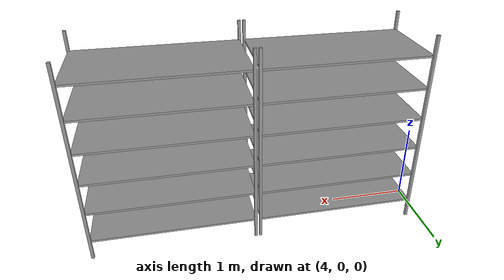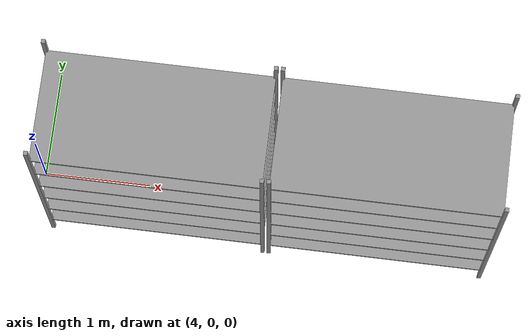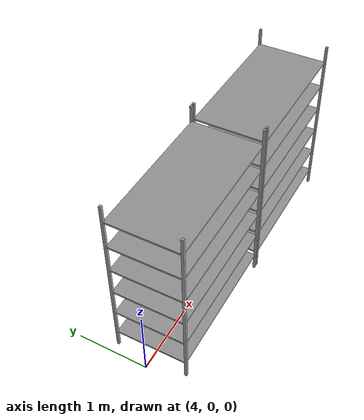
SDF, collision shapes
<sdf version="1.6">
 <model name="shelves">
  <model name="shelf_5">
   <link name="link_1">
    <inertial>
     <mass>1</mass>
     <inertia>
      <ixx>0.166667</ixx>
      <ixy>0</ixy>
      <ixz>0</ixz>
      <iyy>0.166667</iyy>
      <iyz>0</iyz>
      <izz>0.166667</izz>
     </inertia>
    </inertial>
    <visual name="ModelPreview_2::link_1::visual_6">
     <pose>1 0.5 0 0 -0 0</pose>
     <geometry><mesh><uri>model://shelf/model/2-5mDirek.stl</uri><scale>0.001 0.001 0.001</scale></mesh></geometry>
     <material>
      <lighting>1</lighting>
      <script><uri>file://media/materials/scripts/gazebo.material</uri><name>Gazebo/Grey</name></script>
      <shader type="vertex"><normal_map>__default__</normal_map></shader>
      <ambient>0.3 0.3 0.3 1</ambient>
      <diffuse>0.7 0.7 0.7 1</diffuse>
      <specular>0.01 0.01 0.01 1</specular>
      <emissive>0 0 0 1</emissive>
     </material>
    </visual>
    <visual name="ModelPreview_2::link_1::visual_7">
     <pose>-1 0.5 0 0 -0 0</pose>
     <geometry><mesh><uri>model://shelf/model/2-5mDirek.stl</uri><scale>0.001 0.001 0.001</scale></mesh></geometry>
     <material>
      <lighting>1</lighting>
      <script><uri>file://media/materials/scripts/gazebo.material</uri><name>Gazebo/Grey</name></script>
      <shader type="vertex"><normal_map>__default__</normal_map></shader>
      <ambient>0.3 0.3 0.3 1</ambient>
      <diffuse>0.7 0.7 0.7 1</diffuse>
      <specular>0.01 0.01 0.01 1</specular>
      <emissive>0 0 0 1</emissive>
     </material>
    </visual>
    <visual name="ModelPreview_2::link_1::visual_4">
     <pose>0 0 1.85 0 -0 0</pose>
     <geometry><box><size>2 1 0.025</size></box></geometry>
     <material>
      <lighting>1</lighting>
      <script><uri>file://media/materials/scripts/gazebo.material</uri><name>Gazebo/WoodFloor</name></script>
      <shader type="vertex"><normal_map>__default__</normal_map></shader>
      <ambient>0.3 0.3 0.3 1</ambient>
      <diffuse>0.7 0.7 0.7 1</diffuse>
      <specular>0.01 0.01 0.01 1</specular>
      <emissive>0 0 0 1</emissive>
     </material>
    </visual>
    <visual name="ModelPreview_2::link_1::visual_5">
     <pose>0 0 2.25 0 -0 0</pose>
     <geometry><box><size>2 1 0.025</size></box></geometry>
     <material>
      <lighting>1</lighting>
      <script><uri>file://media/materials/scripts/gazebo.material</uri><name>Gazebo/WoodFloor</name></script>
      <shader type="vertex"><normal_map>__default__</normal_map></shader>
      <ambient>0.3 0.3 0.3 1</ambient>
      <diffuse>0.7 0.7 0.7 1</diffuse>
      <specular>0.01 0.01 0.01 1</specular>
      <emissive>0 0 0 1</emissive>
     </material>
    </visual>
    <visual name="ModelPreview_2::link_1::visual_3">
     <pose>0 0 1.45 0 -0 0</pose>
     <geometry><box><size>2 1 0.025</size></box></geometry>
     <material>
      <lighting>1</lighting>
      <script><uri>file://media/materials/scripts/gazebo.material</uri><name>Gazebo/WoodFloor</name></script>
      <shader type="vertex"><normal_map>__default__</normal_map></shader>
      <ambient>0.3 0.3 0.3 1</ambient>
      <diffuse>0.7 0.7 0.7 1</diffuse>
      <specular>0.01 0.01 0.01 1</specular>
      <emissive>0 0 0 1</emissive>
     </material>
    </visual>
    <visual name="ModelPreview_2::link_1::visual_1">
     <pose>0 0 0.65 0 -0 0</pose>
     <geometry><box><size>2 1 0.025</size></box></geometry>
     <material>
      <lighting>1</lighting>
      <script><uri>file://media/materials/scripts/gazebo.material</uri><name>Gazebo/WoodFloor</name></script>
      <shader type="vertex"><normal_map>__default__</normal_map></shader>
      <ambient>0.3 0.3 0.3 1</ambient>
      <diffuse>0.7 0.7 0.7 1</diffuse>
      <specular>0.01 0.01 0.01 1</specular>
      <emissive>0 0 0 1</emissive>
     </material>
    </visual>
    <visual name="visual">
     <pose>0 0 0.25 0 -0 0</pose>
     <geometry><box><size>2 1 0.025</size></box></geometry>
     <material>
      <lighting>1</lighting>
      <script><uri>file://media/materials/scripts/gazebo.material</uri><name>Gazebo/WoodFloor</name></script>
      <shader type="vertex"><normal_map>__default__</normal_map></shader>
      <ambient>0.3 0.3 0.3 1</ambient>
      <diffuse>0.7 0.7 0.7 1</diffuse>
      <specular>0.01 0.01 0.01 1</specular>
      <emissive>0 0 0 1</emissive>
     </material>
    </visual>
    <visual name="ModelPreview_2::link_1::visual_2">
     <pose>0 0 1.05 0 -0 0</pose>
     <geometry><box><size>2 1 0.025</size></box></geometry>
     <material>
      <lighting>1</lighting>
      <script><uri>file://media/materials/scripts/gazebo.material</uri><name>Gazebo/WoodFloor</name></script>
      <shader type="vertex"><normal_map>__default__</normal_map></shader>
      <ambient>0.3 0.3 0.3 1</ambient>
      <diffuse>0.7 0.7 0.7 1</diffuse>
      <specular>0.01 0.01 0.01 1</specular>
      <emissive>0 0 0 1</emissive>
     </material>
    </visual>
    <visual name="ModelPreview_2::link_1::visual_8">
     <pose>1 -0.5 0 0 -0 0</pose>
     <geometry><mesh><uri>model://shelf/model/2-5mDirek.stl</uri><scale>0.001 0.001 0.001</scale></mesh></geometry>
     <material>
      <lighting>1</lighting>
      <script><uri>file://media/materials/scripts/gazebo.material</uri><name>Gazebo/Grey</name></script>
      <shader type="vertex"><normal_map>__default__</normal_map></shader>
      <ambient>0.3 0.3 0.3 1</ambient>
      <diffuse>0.7 0.7 0.7 1</diffuse>
      <specular>0.01 0.01 0.01 1</specular>
      <emissive>0 0 0 1</emissive>
     </material>
    </visual>
    <visual name="ModelPreview_2::link_1::visual_9">
     <pose>-1 -0.5 0 0 -0 0</pose>
     <geometry><mesh><uri>model://shelf/model/2-5mDirek.stl</uri><scale>0.001 0.001 0.001</scale></mesh></geometry>
     <material>
      <lighting>1</lighting>
      <script><uri>file://media/materials/scripts/gazebo.material</uri><name>Gazebo/Grey</name></script>
      <shader type="vertex"><normal_map>__default__</normal_map></shader>
      <ambient>0.3 0.3 0.3 1</ambient>
      <diffuse>0.7 0.7 0.7 1</diffuse>
      <specular>0.01 0.01 0.01 1</specular>
      <emissive>0 0 0 1</emissive>
     </material>
    </visual>
    <collision name="collision_7">
     <pose>1 -0.5 1.25 0 -0 0</pose>
     <geometry><box><size>0.035 0.035 2.5</size></box></geometry>
     <surface>
      <friction>
       <ode><mu>1</mu><mu2>1</mu2><fdir1>0 0 0</fdir1><slip1>0</slip1><slip2>0</slip2></ode>
       <torsional>
        <coefficient>1</coefficient>
        <patch_radius>0</patch_radius>
        <surface_radius>0</surface_radius>
        <use_patch_radius>1</use_patch_radius>
        <ode><slip>0</slip></ode>
       </torsional>
      </friction>
      <bounce><restitution_coefficient>0</restitution_coefficient><threshold>1e+06</threshold></bounce>
      <contact>
       <collide_without_contact>0</collide_without_contact>
       <collide_without_contact_bitmask>1</collide_without_contact_bitmask>
       <collide_bitmask>1</collide_bitmask>
       <ode>
        <soft_cfm>0</soft_cfm>
        <soft_erp>0.2</soft_erp>
        <kp>1e+13</kp>
        <kd>1</kd>
        <max_vel>0.01</max_vel>
        <min_depth>0</min_depth>
       </ode>
       <bullet>
        <split_impulse>1</split_impulse>
        <split_impulse_penetration_threshold>-0.01</split_impulse_penetration_threshold>
        <soft_cfm>0</soft_cfm>
        <soft_erp>0.2</soft_erp>
        <kp>1e+13</kp>
        <kd>1</kd>
       </bullet>
      </contact>
     </surface>
    </collision>
    <collision name="collision_6">
     <pose>1 0.5 1.25 0 -0 0</pose>
     <geometry><box><size>0.035 0.035 2.5</size></box></geometry>
     <surface>
      <friction>
       <ode><mu>1</mu><mu2>1</mu2><fdir1>0 0 0</fdir1><slip1>0</slip1><slip2>0</slip2></ode>
       <torsional>
        <coefficient>1</coefficient>
        <patch_radius>0</patch_radius>
        <surface_radius>0</surface_radius>
        <use_patch_radius>1</use_patch_radius>
        <ode><slip>0</slip></ode>
       </torsional>
      </friction>
      <bounce><restitution_coefficient>0</restitution_coefficient><threshold>1e+06</threshold></bounce>
      <contact>
       <collide_without_contact>0</collide_without_contact>
       <collide_without_contact_bitmask>1</collide_without_contact_bitmask>
       <collide_bitmask>1</collide_bitmask>
       <ode>
        <soft_cfm>0</soft_cfm>
        <soft_erp>0.2</soft_erp>
        <kp>1e+13</kp>
        <kd>1</kd>
        <max_vel>0.01</max_vel>
        <min_depth>0</min_depth>
       </ode>
       <bullet>
        <split_impulse>1</split_impulse>
        <split_impulse_penetration_threshold>-0.01</split_impulse_penetration_threshold>
        <soft_cfm>0</soft_cfm>
        <soft_erp>0.2</soft_erp>
        <kp>1e+13</kp>
        <kd>1</kd>
       </bullet>
      </contact>
     </surface>
    </collision>
    <collision name="collision_2">
     <pose>0 0 1.05 0 -0 0</pose>
     <geometry><box><size>2 1 0.025</size></box></geometry>
     <surface>
      <friction>
       <ode><mu>1</mu><mu2>1</mu2><fdir1>0 0 0</fdir1><slip1>0</slip1><slip2>0</slip2></ode>
       <torsional>
        <coefficient>1</coefficient>
        <patch_radius>0</patch_radius>
        <surface_radius>0</surface_radius>
        <use_patch_radius>1</use_patch_radius>
        <ode><slip>0</slip></ode>
       </torsional>
      </friction>
      <bounce><restitution_coefficient>0</restitution_coefficient><threshold>1e+06</threshold></bounce>
      <contact>
       <collide_without_contact>0</collide_without_contact>
       <collide_without_contact_bitmask>1</collide_without_contact_bitmask>
       <collide_bitmask>1</collide_bitmask>
       <ode>
        <soft_cfm>0</soft_cfm>
        <soft_erp>0.2</soft_erp>
        <kp>1e+13</kp>
        <kd>1</kd>
        <max_vel>0.01</max_vel>
        <min_depth>0</min_depth>
       </ode>
       <bullet>
        <split_impulse>1</split_impulse>
        <split_impulse_penetration_threshold>-0.01</split_impulse_penetration_threshold>
        <soft_cfm>0</soft_cfm>
        <soft_erp>0.2</soft_erp>
        <kp>1e+13</kp>
        <kd>1</kd>
       </bullet>
      </contact>
     </surface>
    </collision>
    <collision name="collision_8">
     <pose>-1 0.5 1.25 0 -0 0</pose>
     <geometry><box><size>0.035 0.035 2.5</size></box></geometry>
     <surface>
      <friction>
       <ode><mu>1</mu><mu2>1</mu2><fdir1>0 0 0</fdir1><slip1>0</slip1><slip2>0</slip2></ode>
       <torsional>
        <coefficient>1</coefficient>
        <patch_radius>0</patch_radius>
        <surface_radius>0</surface_radius>
        <use_patch_radius>1</use_patch_radius>
        <ode><slip>0</slip></ode>
       </torsional>
      </friction>
      <bounce><restitution_coefficient>0</restitution_coefficient><threshold>1e+06</threshold></bounce>
      <contact>
       <collide_without_contact>0</collide_without_contact>
       <collide_without_contact_bitmask>1</collide_without_contact_bitmask>
       <collide_bitmask>1</collide_bitmask>
       <ode>
        <soft_cfm>0</soft_cfm>
        <soft_erp>0.2</soft_erp>
        <kp>1e+13</kp>
        <kd>1</kd>
        <max_vel>0.01</max_vel>
        <min_depth>0</min_depth>
       </ode>
       <bullet>
        <split_impulse>1</split_impulse>
        <split_impulse_penetration_threshold>-0.01</split_impulse_penetration_threshold>
        <soft_cfm>0</soft_cfm>
        <soft_erp>0.2</soft_erp>
        <kp>1e+13</kp>
        <kd>1</kd>
       </bullet>
      </contact>
     </surface>
    </collision>
    <collision name="collision_4">
     <pose>0 0 1.85 0 -0 0</pose>
     <geometry><box><size>2 1 0.025</size></box></geometry>
     <surface>
      <friction>
       <ode><mu>1</mu><mu2>1</mu2><fdir1>0 0 0</fdir1><slip1>0</slip1><slip2>0</slip2></ode>
       <torsional>
        <coefficient>1</coefficient>
        <patch_radius>0</patch_radius>
        <surface_radius>0</surface_radius>
        <use_patch_radius>1</use_patch_radius>
        <ode><slip>0</slip></ode>
       </torsional>
      </friction>
      <bounce><restitution_coefficient>0</restitution_coefficient><threshold>1e+06</threshold></bounce>
      <contact>
       <collide_without_contact>0</collide_without_contact>
       <collide_without_contact_bitmask>1</collide_without_contact_bitmask>
       <collide_bitmask>1</collide_bitmask>
       <ode>
        <soft_cfm>0</soft_cfm>
        <soft_erp>0.2</soft_erp>
        <kp>1e+13</kp>
        <kd>1</kd>
        <max_vel>0.01</max_vel>
        <min_depth>0</min_depth>
       </ode>
       <bullet>
        <split_impulse>1</split_impulse>
        <split_impulse_penetration_threshold>-0.01</split_impulse_penetration_threshold>
        <soft_cfm>0</soft_cfm>
        <soft_erp>0.2</soft_erp>
        <kp>1e+13</kp>
        <kd>1</kd>
       </bullet>
      </contact>
     </surface>
    </collision>
    <collision name="collision_1">
     <pose>0 0 0.65 0 -0 0</pose>
     <geometry><box><size>2 1 0.025</size></box></geometry>
     <surface>
      <friction>
       <ode><mu>1</mu><mu2>1</mu2><fdir1>0 0 0</fdir1><slip1>0</slip1><slip2>0</slip2></ode>
       <torsional>
        <coefficient>1</coefficient>
        <patch_radius>0</patch_radius>
        <surface_radius>0</surface_radius>
        <use_patch_radius>1</use_patch_radius>
        <ode><slip>0</slip></ode>
       </torsional>
      </friction>
      <bounce><restitution_coefficient>0</restitution_coefficient><threshold>1e+06</threshold></bounce>
      <contact>
       <collide_without_contact>0</collide_without_contact>
       <collide_without_contact_bitmask>1</collide_without_contact_bitmask>
       <collide_bitmask>1</collide_bitmask>
       <ode>
        <soft_cfm>0</soft_cfm>
        <soft_erp>0.2</soft_erp>
        <kp>1e+13</kp>
        <kd>1</kd>
        <max_vel>0.01</max_vel>
        <min_depth>0</min_depth>
       </ode>
       <bullet>
        <split_impulse>1</split_impulse>
        <split_impulse_penetration_threshold>-0.01</split_impulse_penetration_threshold>
        <soft_cfm>0</soft_cfm>
        <soft_erp>0.2</soft_erp>
        <kp>1e+13</kp>
        <kd>1</kd>
       </bullet>
      </contact>
     </surface>
    </collision>
    <collision name="collision_3">
     <pose>0 0 1.45 0 -0 0</pose>
     <geometry><box><size>2 1 0.025</size></box></geometry>
     <surface>
      <friction>
       <ode><mu>1</mu><mu2>1</mu2><fdir1>0 0 0</fdir1><slip1>0</slip1><slip2>0</slip2></ode>
       <torsional>
        <coefficient>1</coefficient>
        <patch_radius>0</patch_radius>
        <surface_radius>0</surface_radius>
        <use_patch_radius>1</use_patch_radius>
        <ode><slip>0</slip></ode>
       </torsional>
      </friction>
      <bounce><restitution_coefficient>0</restitution_coefficient><threshold>1e+06</threshold></bounce>
      <contact>
       <collide_without_contact>0</collide_without_contact>
       <collide_without_contact_bitmask>1</collide_without_contact_bitmask>
       <collide_bitmask>1</collide_bitmask>
       <ode>
        <soft_cfm>0</soft_cfm>
        <soft_erp>0.2</soft_erp>
        <kp>1e+13</kp>
        <kd>1</kd>
        <max_vel>0.01</max_vel>
        <min_depth>0</min_depth>
       </ode>
       <bullet>
        <split_impulse>1</split_impulse>
        <split_impulse_penetration_threshold>-0.01</split_impulse_penetration_threshold>
        <soft_cfm>0</soft_cfm>
        <soft_erp>0.2</soft_erp>
        <kp>1e+13</kp>
        <kd>1</kd>
       </bullet>
      </contact>
     </surface>
    </collision>
    <collision name="collision_5">
     <pose>0 0 2.25 0 -0 0</pose>
     <geometry><box><size>2 1 0.025</size></box></geometry>
     <surface>
      <friction>
       <ode><mu>1</mu><mu2>1</mu2><fdir1>0 0 0</fdir1><slip1>0</slip1><slip2>0</slip2></ode>
       <torsional>
        <coefficient>1</coefficient>
        <patch_radius>0</patch_radius>
        <surface_radius>0</surface_radius>
        <use_patch_radius>1</use_patch_radius>
        <ode><slip>0</slip></ode>
       </torsional>
      </friction>
      <bounce><restitution_coefficient>0</restitution_coefficient><threshold>1e+06</threshold></bounce>
      <contact>
       <collide_without_contact>0</collide_without_contact>
       <collide_without_contact_bitmask>1</collide_without_contact_bitmask>
       <collide_bitmask>1</collide_bitmask>
       <ode>
        <soft_cfm>0</soft_cfm>
        <soft_erp>0.2</soft_erp>
        <kp>1e+13</kp>
        <kd>1</kd>
        <max_vel>0.01</max_vel>
        <min_depth>0</min_depth>
       </ode>
       <bullet>
        <split_impulse>1</split_impulse>
        <split_impulse_penetration_threshold>-0.01</split_impulse_penetration_threshold>
        <soft_cfm>0</soft_cfm>
        <soft_erp>0.2</soft_erp>
        <kp>1e+13</kp>
        <kd>1</kd>
       </bullet>
      </contact>
     </surface>
    </collision>
    <collision name="collision">
     <pose>0 0 0.25 0 -0 0</pose>
     <geometry><box><size>2 1 0.025</size></box></geometry>
     <surface>
      <friction>
       <ode><mu>1</mu><mu2>1</mu2><fdir1>0 0 0</fdir1><slip1>0</slip1><slip2>0</slip2></ode>
       <torsional>
        <coefficient>1</coefficient>
        <patch_radius>0</patch_radius>
        <surface_radius>0</surface_radius>
        <use_patch_radius>1</use_patch_radius>
        <ode><slip>0</slip></ode>
       </torsional>
      </friction>
      <bounce><restitution_coefficient>0</restitution_coefficient><threshold>1e+06</threshold></bounce>
      <contact>
       <collide_without_contact>0</collide_without_contact>
       <collide_without_contact_bitmask>1</collide_without_contact_bitmask>
       <collide_bitmask>1</collide_bitmask>
       <ode>
        <soft_cfm>0</soft_cfm>
        <soft_erp>0.2</soft_erp>
        <kp>1e+13</kp>
        <kd>1</kd>
        <max_vel>0.01</max_vel>
        <min_depth>0</min_depth>
       </ode>
       <bullet>
        <split_impulse>1</split_impulse>
        <split_impulse_penetration_threshold>-0.01</split_impulse_penetration_threshold>
        <soft_cfm>0</soft_cfm>
        <soft_erp>0.2</soft_erp>
        <kp>1e+13</kp>
        <kd>1</kd>
       </bullet>
      </contact>
     </surface>
    </collision>
    <collision name="collision_9">
     <pose>-1 -0.5 1.25 0 -0 0</pose>
     <geometry><box><size>0.035 0.035 2.5</size></box></geometry>
     <surface>
      <friction>
       <ode><mu>1</mu><mu2>1</mu2><fdir1>0 0 0</fdir1><slip1>0</slip1><slip2>0</slip2></ode>
       <torsional>
        <coefficient>1</coefficient>
        <patch_radius>0</patch_radius>
        <surface_radius>0</surface_radius>
        <use_patch_radius>1</use_patch_radius>
        <ode><slip>0</slip></ode>
       </torsional>
      </friction>
      <bounce><restitution_coefficient>0</restitution_coefficient><threshold>1e+06</threshold></bounce>
      <contact>
       <collide_without_contact>0</collide_without_contact>
       <collide_without_contact_bitmask>1</collide_without_contact_bitmask>
       <collide_bitmask>1</collide_bitmask>
       <ode>
        <soft_cfm>0</soft_cfm>
        <soft_erp>0.2</soft_erp>
        <kp>1e+13</kp>
        <kd>1</kd>
        <max_vel>0.01</max_vel>
        <min_depth>0</min_depth>
       </ode>
       <bullet>
        <split_impulse>1</split_impulse>
        <split_impulse_penetration_threshold>-0.01</split_impulse_penetration_threshold>
        <soft_cfm>0</soft_cfm>
        <soft_erp>0.2</soft_erp>
        <kp>1e+13</kp>
        <kd>1</kd>
       </bullet>
      </contact>
     </surface>
    </collision>
   </link>
   <static>1</static>
   <pose>5.15039 0.000698 0 0 -0 0</pose>
  </model>
  <model name="shelf_6">
   <link name="link_1">
    <inertial>
     <mass>1</mass>
     <inertia>
      <ixx>0.166667</ixx>
      <ixy>0</ixy>
      <ixz>0</ixz>
      <iyy>0.166667</iyy>
      <iyz>0</iyz>
      <izz>0.166667</izz>
     </inertia>
    </inertial>
    <visual name="ModelPreview_2::link_1::visual_6">
     <pose>1 0.5 0 0 -0 0</pose>
     <geometry><mesh><uri>model://shelf/model/2-5mDirek.stl</uri><scale>0.001 0.001 0.001</scale></mesh></geometry>
     <material>
      <lighting>1</lighting>
      <script><uri>file://media/materials/scripts/gazebo.material</uri><name>Gazebo/Grey</name></script>
      <shader type="vertex"><normal_map>__default__</normal_map></shader>
      <ambient>0.3 0.3 0.3 1</ambient>
      <diffuse>0.7 0.7 0.7 1</diffuse>
      <specular>0.01 0.01 0.01 1</specular>
      <emissive>0 0 0 1</emissive>
     </material>
    </visual>
    <visual name="ModelPreview_2::link_1::visual_7">
     <pose>-1 0.5 0 0 -0 0</pose>
     <geometry><mesh><uri>model://shelf/model/2-5mDirek.stl</uri><scale>0.001 0.001 0.001</scale></mesh></geometry>
     <material>
      <lighting>1</lighting>
      <script><uri>file://media/materials/scripts/gazebo.material</uri><name>Gazebo/Grey</name></script>
      <shader type="vertex"><normal_map>__default__</normal_map></shader>
      <ambient>0.3 0.3 0.3 1</ambient>
      <diffuse>0.7 0.7 0.7 1</diffuse>
      <specular>0.01 0.01 0.01 1</specular>
      <emissive>0 0 0 1</emissive>
     </material>
    </visual>
    <visual name="ModelPreview_2::link_1::visual_4">
     <pose>0 0 1.85 0 -0 0</pose>
     <geometry><box><size>2 1 0.025</size></box></geometry>
     <material>
      <lighting>1</lighting>
      <script><uri>file://media/materials/scripts/gazebo.material</uri><name>Gazebo/WoodFloor</name></script>
      <shader type="vertex"><normal_map>__default__</normal_map></shader>
      <ambient>0.3 0.3 0.3 1</ambient>
      <diffuse>0.7 0.7 0.7 1</diffuse>
      <specular>0.01 0.01 0.01 1</specular>
      <emissive>0 0 0 1</emissive>
     </material>
    </visual>
    <visual name="ModelPreview_2::link_1::visual_5">
     <pose>0 0 2.25 0 -0 0</pose>
     <geometry><box><size>2 1 0.025</size></box></geometry>
     <material>
      <lighting>1</lighting>
      <script><uri>file://media/materials/scripts/gazebo.material</uri><name>Gazebo/WoodFloor</name></script>
      <shader type="vertex"><normal_map>__default__</normal_map></shader>
      <ambient>0.3 0.3 0.3 1</ambient>
      <diffuse>0.7 0.7 0.7 1</diffuse>
      <specular>0.01 0.01 0.01 1</specular>
      <emissive>0 0 0 1</emissive>
     </material>
    </visual>
    <visual name="ModelPreview_2::link_1::visual_3">
     <pose>0 0 1.45 0 -0 0</pose>
     <geometry><box><size>2 1 0.025</size></box></geometry>
     <material>
      <lighting>1</lighting>
      <script><uri>file://media/materials/scripts/gazebo.material</uri><name>Gazebo/WoodFloor</name></script>
      <shader type="vertex"><normal_map>__default__</normal_map></shader>
      <ambient>0.3 0.3 0.3 1</ambient>
      <diffuse>0.7 0.7 0.7 1</diffuse>
      <specular>0.01 0.01 0.01 1</specular>
      <emissive>0 0 0 1</emissive>
     </material>
    </visual>
    <visual name="ModelPreview_2::link_1::visual_1">
     <pose>0 0 0.65 0 -0 0</pose>
     <geometry><box><size>2 1 0.025</size></box></geometry>
     <material>
      <lighting>1</lighting>
      <script><uri>file://media/materials/scripts/gazebo.material</uri><name>Gazebo/WoodFloor</name></script>
      <shader type="vertex"><normal_map>__default__</normal_map></shader>
      <ambient>0.3 0.3 0.3 1</ambient>
      <diffuse>0.7 0.7 0.7 1</diffuse>
      <specular>0.01 0.01 0.01 1</specular>
      <emissive>0 0 0 1</emissive>
     </material>
    </visual>
    <visual name="visual">
     <pose>0 0 0.25 0 -0 0</pose>
     <geometry><box><size>2 1 0.025</size></box></geometry>
     <material>
      <lighting>1</lighting>
      <script><uri>file://media/materials/scripts/gazebo.material</uri><name>Gazebo/WoodFloor</name></script>
      <shader type="vertex"><normal_map>__default__</normal_map></shader>
      <ambient>0.3 0.3 0.3 1</ambient>
      <diffuse>0.7 0.7 0.7 1</diffuse>
      <specular>0.01 0.01 0.01 1</specular>
      <emissive>0 0 0 1</emissive>
     </material>
    </visual>
    <visual name="ModelPreview_2::link_1::visual_2">
     <pose>0 0 1.05 0 -0 0</pose>
     <geometry><box><size>2 1 0.025</size></box></geometry>
     <material>
      <lighting>1</lighting>
      <script><uri>file://media/materials/scripts/gazebo.material</uri><name>Gazebo/WoodFloor</name></script>
      <shader type="vertex"><normal_map>__default__</normal_map></shader>
      <ambient>0.3 0.3 0.3 1</ambient>
      <diffuse>0.7 0.7 0.7 1</diffuse>
      <specular>0.01 0.01 0.01 1</specular>
      <emissive>0 0 0 1</emissive>
     </material>
    </visual>
    <visual name="ModelPreview_2::link_1::visual_8">
     <pose>1 -0.5 0 0 -0 0</pose>
     <geometry><mesh><uri>model://shelf/model/2-5mDirek.stl</uri><scale>0.001 0.001 0.001</scale></mesh></geometry>
     <material>
      <lighting>1</lighting>
      <script><uri>file://media/materials/scripts/gazebo.material</uri><name>Gazebo/Grey</name></script>
      <shader type="vertex"><normal_map>__default__</normal_map></shader>
      <ambient>0.3 0.3 0.3 1</ambient>
      <diffuse>0.7 0.7 0.7 1</diffuse>
      <specular>0.01 0.01 0.01 1</specular>
      <emissive>0 0 0 1</emissive>
     </material>
    </visual>
    <visual name="ModelPreview_2::link_1::visual_9">
     <pose>-1 -0.5 0 0 -0 0</pose>
     <geometry><mesh><uri>model://shelf/model/2-5mDirek.stl</uri><scale>0.001 0.001 0.001</scale></mesh></geometry>
     <material>
      <lighting>1</lighting>
      <script><uri>file://media/materials/scripts/gazebo.material</uri><name>Gazebo/Grey</name></script>
      <shader type="vertex"><normal_map>__default__</normal_map></shader>
      <ambient>0.3 0.3 0.3 1</ambient>
      <diffuse>0.7 0.7 0.7 1</diffuse>
      <specular>0.01 0.01 0.01 1</specular>
      <emissive>0 0 0 1</emissive>
     </material>
    </visual>
    <collision name="collision_7">
     <pose>1 -0.5 1.25 0 -0 0</pose>
     <geometry><box><size>0.035 0.035 2.5</size></box></geometry>
     <surface>
      <friction>
       <ode><mu>1</mu><mu2>1</mu2><fdir1>0 0 0</fdir1><slip1>0</slip1><slip2>0</slip2></ode>
       <torsional>
        <coefficient>1</coefficient>
        <patch_radius>0</patch_radius>
        <surface_radius>0</surface_radius>
        <use_patch_radius>1</use_patch_radius>
        <ode><slip>0</slip></ode>
       </torsional>
      </friction>
      <bounce><restitution_coefficient>0</restitution_coefficient><threshold>1e+06</threshold></bounce>
      <contact>
       <collide_without_contact>0</collide_without_contact>
       <collide_without_contact_bitmask>1</collide_without_contact_bitmask>
       <collide_bitmask>1</collide_bitmask>
       <ode>
        <soft_cfm>0</soft_cfm>
        <soft_erp>0.2</soft_erp>
        <kp>1e+13</kp>
        <kd>1</kd>
        <max_vel>0.01</max_vel>
        <min_depth>0</min_depth>
       </ode>
       <bullet>
        <split_impulse>1</split_impulse>
        <split_impulse_penetration_threshold>-0.01</split_impulse_penetration_threshold>
        <soft_cfm>0</soft_cfm>
        <soft_erp>0.2</soft_erp>
        <kp>1e+13</kp>
        <kd>1</kd>
       </bullet>
      </contact>
     </surface>
    </collision>
    <collision name="collision_6">
     <pose>1 0.5 1.25 0 -0 0</pose>
     <geometry><box><size>0.035 0.035 2.5</size></box></geometry>
     <surface>
      <friction>
       <ode><mu>1</mu><mu2>1</mu2><fdir1>0 0 0</fdir1><slip1>0</slip1><slip2>0</slip2></ode>
       <torsional>
        <coefficient>1</coefficient>
        <patch_radius>0</patch_radius>
        <surface_radius>0</surface_radius>
        <use_patch_radius>1</use_patch_radius>
        <ode><slip>0</slip></ode>
       </torsional>
      </friction>
      <bounce><restitution_coefficient>0</restitution_coefficient><threshold>1e+06</threshold></bounce>
      <contact>
       <collide_without_contact>0</collide_without_contact>
       <collide_without_contact_bitmask>1</collide_without_contact_bitmask>
       <collide_bitmask>1</collide_bitmask>
       <ode>
        <soft_cfm>0</soft_cfm>
        <soft_erp>0.2</soft_erp>
        <kp>1e+13</kp>
        <kd>1</kd>
        <max_vel>0.01</max_vel>
        <min_depth>0</min_depth>
       </ode>
       <bullet>
        <split_impulse>1</split_impulse>
        <split_impulse_penetration_threshold>-0.01</split_impulse_penetration_threshold>
        <soft_cfm>0</soft_cfm>
        <soft_erp>0.2</soft_erp>
        <kp>1e+13</kp>
        <kd>1</kd>
       </bullet>
      </contact>
     </surface>
    </collision>
    <collision name="collision_2">
     <pose>0 0 1.05 0 -0 0</pose>
     <geometry><box><size>2 1 0.025</size></box></geometry>
     <surface>
      <friction>
       <ode><mu>1</mu><mu2>1</mu2><fdir1>0 0 0</fdir1><slip1>0</slip1><slip2>0</slip2></ode>
       <torsional>
        <coefficient>1</coefficient>
        <patch_radius>0</patch_radius>
        <surface_radius>0</surface_radius>
        <use_patch_radius>1</use_patch_radius>
        <ode><slip>0</slip></ode>
       </torsional>
      </friction>
      <bounce><restitution_coefficient>0</restitution_coefficient><threshold>1e+06</threshold></bounce>
      <contact>
       <collide_without_contact>0</collide_without_contact>
       <collide_without_contact_bitmask>1</collide_without_contact_bitmask>
       <collide_bitmask>1</collide_bitmask>
       <ode>
        <soft_cfm>0</soft_cfm>
        <soft_erp>0.2</soft_erp>
        <kp>1e+13</kp>
        <kd>1</kd>
        <max_vel>0.01</max_vel>
        <min_depth>0</min_depth>
       </ode>
       <bullet>
        <split_impulse>1</split_impulse>
        <split_impulse_penetration_threshold>-0.01</split_impulse_penetration_threshold>
        <soft_cfm>0</soft_cfm>
        <soft_erp>0.2</soft_erp>
        <kp>1e+13</kp>
        <kd>1</kd>
       </bullet>
      </contact>
     </surface>
    </collision>
    <collision name="collision_8">
     <pose>-1 0.5 1.25 0 -0 0</pose>
     <geometry><box><size>0.035 0.035 2.5</size></box></geometry>
     <surface>
      <friction>
       <ode><mu>1</mu><mu2>1</mu2><fdir1>0 0 0</fdir1><slip1>0</slip1><slip2>0</slip2></ode>
       <torsional>
        <coefficient>1</coefficient>
        <patch_radius>0</patch_radius>
        <surface_radius>0</surface_radius>
        <use_patch_radius>1</use_patch_radius>
        <ode><slip>0</slip></ode>
       </torsional>
      </friction>
      <bounce><restitution_coefficient>0</restitution_coefficient><threshold>1e+06</threshold></bounce>
      <contact>
       <collide_without_contact>0</collide_without_contact>
       <collide_without_contact_bitmask>1</collide_without_contact_bitmask>
       <collide_bitmask>1</collide_bitmask>
       <ode>
        <soft_cfm>0</soft_cfm>
        <soft_erp>0.2</soft_erp>
        <kp>1e+13</kp>
        <kd>1</kd>
        <max_vel>0.01</max_vel>
        <min_depth>0</min_depth>
       </ode>
       <bullet>
        <split_impulse>1</split_impulse>
        <split_impulse_penetration_threshold>-0.01</split_impulse_penetration_threshold>
        <soft_cfm>0</soft_cfm>
        <soft_erp>0.2</soft_erp>
        <kp>1e+13</kp>
        <kd>1</kd>
       </bullet>
      </contact>
     </surface>
    </collision>
    <collision name="collision_4">
     <pose>0 0 1.85 0 -0 0</pose>
     <geometry><box><size>2 1 0.025</size></box></geometry>
     <surface>
      <friction>
       <ode><mu>1</mu><mu2>1</mu2><fdir1>0 0 0</fdir1><slip1>0</slip1><slip2>0</slip2></ode>
       <torsional>
        <coefficient>1</coefficient>
        <patch_radius>0</patch_radius>
        <surface_radius>0</surface_radius>
        <use_patch_radius>1</use_patch_radius>
        <ode><slip>0</slip></ode>
       </torsional>
      </friction>
      <bounce><restitution_coefficient>0</restitution_coefficient><threshold>1e+06</threshold></bounce>
      <contact>
       <collide_without_contact>0</collide_without_contact>
       <collide_without_contact_bitmask>1</collide_without_contact_bitmask>
       <collide_bitmask>1</collide_bitmask>
       <ode>
        <soft_cfm>0</soft_cfm>
        <soft_erp>0.2</soft_erp>
        <kp>1e+13</kp>
        <kd>1</kd>
        <max_vel>0.01</max_vel>
        <min_depth>0</min_depth>
       </ode>
       <bullet>
        <split_impulse>1</split_impulse>
        <split_impulse_penetration_threshold>-0.01</split_impulse_penetration_threshold>
        <soft_cfm>0</soft_cfm>
        <soft_erp>0.2</soft_erp>
        <kp>1e+13</kp>
        <kd>1</kd>
       </bullet>
      </contact>
     </surface>
    </collision>
    <collision name="collision_1">
     <pose>0 0 0.65 0 -0 0</pose>
     <geometry><box><size>2 1 0.025</size></box></geometry>
     <surface>
      <friction>
       <ode><mu>1</mu><mu2>1</mu2><fdir1>0 0 0</fdir1><slip1>0</slip1><slip2>0</slip2></ode>
       <torsional>
        <coefficient>1</coefficient>
        <patch_radius>0</patch_radius>
        <surface_radius>0</surface_radius>
        <use_patch_radius>1</use_patch_radius>
        <ode><slip>0</slip></ode>
       </torsional>
      </friction>
      <bounce><restitution_coefficient>0</restitution_coefficient><threshold>1e+06</threshold></bounce>
      <contact>
       <collide_without_contact>0</collide_without_contact>
       <collide_without_contact_bitmask>1</collide_without_contact_bitmask>
       <collide_bitmask>1</collide_bitmask>
       <ode>
        <soft_cfm>0</soft_cfm>
        <soft_erp>0.2</soft_erp>
        <kp>1e+13</kp>
        <kd>1</kd>
        <max_vel>0.01</max_vel>
        <min_depth>0</min_depth>
       </ode>
       <bullet>
        <split_impulse>1</split_impulse>
        <split_impulse_penetration_threshold>-0.01</split_impulse_penetration_threshold>
        <soft_cfm>0</soft_cfm>
        <soft_erp>0.2</soft_erp>
        <kp>1e+13</kp>
        <kd>1</kd>
       </bullet>
      </contact>
     </surface>
    </collision>
    <collision name="collision_3">
     <pose>0 0 1.45 0 -0 0</pose>
     <geometry><box><size>2 1 0.025</size></box></geometry>
     <surface>
      <friction>
       <ode><mu>1</mu><mu2>1</mu2><fdir1>0 0 0</fdir1><slip1>0</slip1><slip2>0</slip2></ode>
       <torsional>
        <coefficient>1</coefficient>
        <patch_radius>0</patch_radius>
        <surface_radius>0</surface_radius>
        <use_patch_radius>1</use_patch_radius>
        <ode><slip>0</slip></ode>
       </torsional>
      </friction>
      <bounce><restitution_coefficient>0</restitution_coefficient><threshold>1e+06</threshold></bounce>
      <contact>
       <collide_without_contact>0</collide_without_contact>
       <collide_without_contact_bitmask>1</collide_without_contact_bitmask>
       <collide_bitmask>1</collide_bitmask>
       <ode>
        <soft_cfm>0</soft_cfm>
        <soft_erp>0.2</soft_erp>
        <kp>1e+13</kp>
        <kd>1</kd>
        <max_vel>0.01</max_vel>
        <min_depth>0</min_depth>
       </ode>
       <bullet>
        <split_impulse>1</split_impulse>
        <split_impulse_penetration_threshold>-0.01</split_impulse_penetration_threshold>
        <soft_cfm>0</soft_cfm>
        <soft_erp>0.2</soft_erp>
        <kp>1e+13</kp>
        <kd>1</kd>
       </bullet>
      </contact>
     </surface>
    </collision>
    <collision name="collision_5">
     <pose>0 0 2.25 0 -0 0</pose>
     <geometry><box><size>2 1 0.025</size></box></geometry>
     <surface>
      <friction>
       <ode><mu>1</mu><mu2>1</mu2><fdir1>0 0 0</fdir1><slip1>0</slip1><slip2>0</slip2></ode>
       <torsional>
        <coefficient>1</coefficient>
        <patch_radius>0</patch_radius>
        <surface_radius>0</surface_radius>
        <use_patch_radius>1</use_patch_radius>
        <ode><slip>0</slip></ode>
       </torsional>
      </friction>
      <bounce><restitution_coefficient>0</restitution_coefficient><threshold>1e+06</threshold></bounce>
      <contact>
       <collide_without_contact>0</collide_without_contact>
       <collide_without_contact_bitmask>1</collide_without_contact_bitmask>
       <collide_bitmask>1</collide_bitmask>
       <ode>
        <soft_cfm>0</soft_cfm>
        <soft_erp>0.2</soft_erp>
        <kp>1e+13</kp>
        <kd>1</kd>
        <max_vel>0.01</max_vel>
        <min_depth>0</min_depth>
       </ode>
       <bullet>
        <split_impulse>1</split_impulse>
        <split_impulse_penetration_threshold>-0.01</split_impulse_penetration_threshold>
        <soft_cfm>0</soft_cfm>
        <soft_erp>0.2</soft_erp>
        <kp>1e+13</kp>
        <kd>1</kd>
       </bullet>
      </contact>
     </surface>
    </collision>
    <collision name="collision">
     <pose>0 0 0.25 0 -0 0</pose>
     <geometry><box><size>2 1 0.025</size></box></geometry>
     <surface>
      <friction>
       <ode><mu>1</mu><mu2>1</mu2><fdir1>0 0 0</fdir1><slip1>0</slip1><slip2>0</slip2></ode>
       <torsional>
        <coefficient>1</coefficient>
        <patch_radius>0</patch_radius>
        <surface_radius>0</surface_radius>
        <use_patch_radius>1</use_patch_radius>
        <ode><slip>0</slip></ode>
       </torsional>
      </friction>
      <bounce><restitution_coefficient>0</restitution_coefficient><threshold>1e+06</threshold></bounce>
      <contact>
       <collide_without_contact>0</collide_without_contact>
       <collide_without_contact_bitmask>1</collide_without_contact_bitmask>
       <collide_bitmask>1</collide_bitmask>
       <ode>
        <soft_cfm>0</soft_cfm>
        <soft_erp>0.2</soft_erp>
        <kp>1e+13</kp>
        <kd>1</kd>
        <max_vel>0.01</max_vel>
        <min_depth>0</min_depth>
       </ode>
       <bullet>
        <split_impulse>1</split_impulse>
        <split_impulse_penetration_threshold>-0.01</split_impulse_penetration_threshold>
        <soft_cfm>0</soft_cfm>
        <soft_erp>0.2</soft_erp>
        <kp>1e+13</kp>
        <kd>1</kd>
       </bullet>
      </contact>
     </surface>
    </collision>
    <collision name="collision_9">
     <pose>-1 -0.5 1.25 0 -0 0</pose>
     <geometry><box><size>0.035 0.035 2.5</size></box></geometry>
     <surface>
      <friction>
       <ode><mu>1</mu><mu2>1</mu2><fdir1>0 0 0</fdir1><slip1>0</slip1><slip2>0</slip2></ode>
       <torsional>
        <coefficient>1</coefficient>
        <patch_radius>0</patch_radius>
        <surface_radius>0</surface_radius>
        <use_patch_radius>1</use_patch_radius>
        <ode><slip>0</slip></ode>
       </torsional>
      </friction>
      <bounce><restitution_coefficient>0</restitution_coefficient><threshold>1e+06</threshold></bounce>
      <contact>
       <collide_without_contact>0</collide_without_contact>
       <collide_without_contact_bitmask>1</collide_without_contact_bitmask>
       <collide_bitmask>1</collide_bitmask>
       <ode>
        <soft_cfm>0</soft_cfm>
        <soft_erp>0.2</soft_erp>
        <kp>1e+13</kp>
        <kd>1</kd>
        <max_vel>0.01</max_vel>
        <min_depth>0</min_depth>
       </ode>
       <bullet>
        <split_impulse>1</split_impulse>
        <split_impulse_penetration_threshold>-0.01</split_impulse_penetration_threshold>
        <soft_cfm>0</soft_cfm>
        <soft_erp>0.2</soft_erp>
        <kp>1e+13</kp>
        <kd>1</kd>
       </bullet>
      </contact>
     </surface>
    </collision>
   </link>
   <static>1</static>
   <pose>7.20976 0.001633 0 0 -0 0</pose>
  </model>
  <static>1</static>
 </model>
</sdf>
